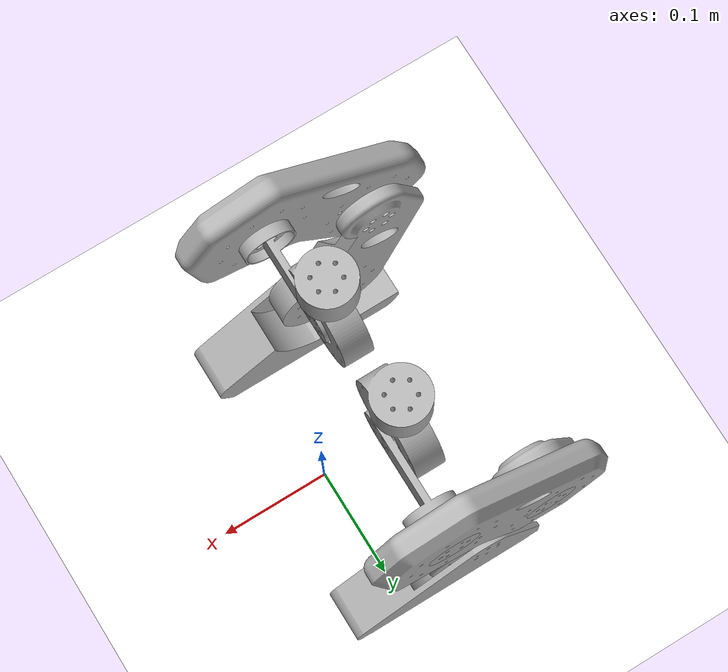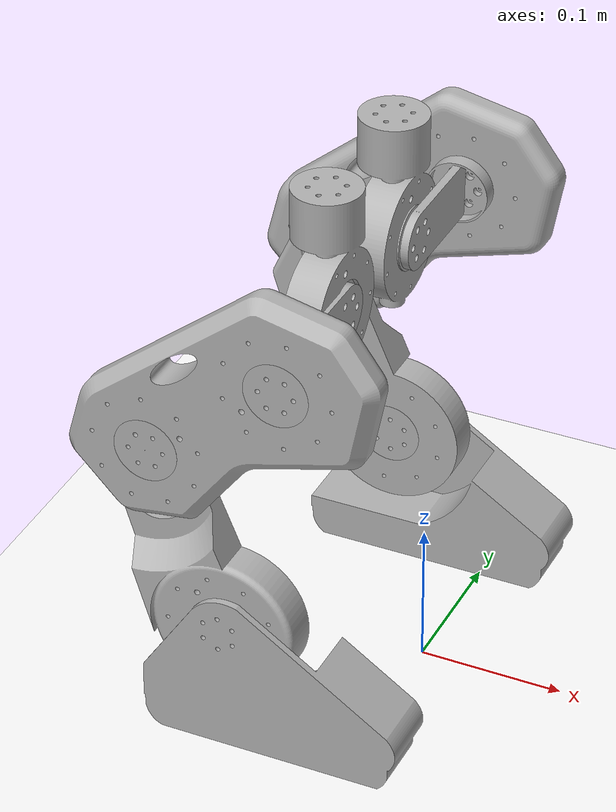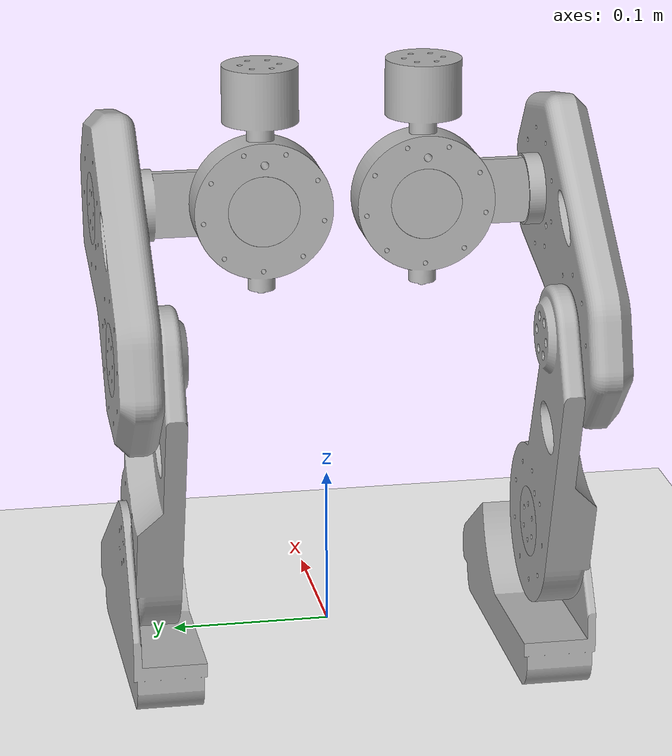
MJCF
<mujoco model="mak-zero">
  <compiler angle="radian" />

  <asset>
    <mesh name="pelvis" file="/Users/wangxiaochuan/wangxc/popmart/mak-gym/resources/robots/makZero/meshes/pelvis.stl" scale="0.001 0.001 0.001" />
    <mesh name="left_foot" file="/Users/wangxiaochuan/wangxc/popmart/mak-gym/resources/robots/makZero/meshes/left_foot.stl" scale="0.001 0.001 0.001" />
    <mesh name="left_shin" file="/Users/wangxiaochuan/wangxc/popmart/mak-gym/resources/robots/makZero/meshes/left_shin.stl" scale="0.001 0.001 0.001" />
    <mesh name="left_thigh" file="/Users/wangxiaochuan/wangxc/popmart/mak-gym/resources/robots/makZero/meshes/left_thigh.stl" scale="0.001 0.001 0.001" />
    <mesh name="left_hip" file="/Users/wangxiaochuan/wangxc/popmart/mak-gym/resources/robots/makZero/meshes/left_hip.stl" scale="0.001 0.001 0.001" />
    <mesh name="left_hip_rotation" file="/Users/wangxiaochuan/wangxc/popmart/mak-gym/resources/robots/makZero/meshes/left_hip_rotation.stl" scale="0.001 0.001 0.001" />
    <mesh name="right_foot" file="/Users/wangxiaochuan/wangxc/popmart/mak-gym/resources/robots/makZero/meshes/right_foot.stl" scale="0.001 0.001 0.001" />
    <mesh name="right_shin" file="/Users/wangxiaochuan/wangxc/popmart/mak-gym/resources/robots/makZero/meshes/right_shin.stl" scale="0.001 0.001 0.001" />
    <mesh name="right_thigh" file="/Users/wangxiaochuan/wangxc/popmart/mak-gym/resources/robots/makZero/meshes/right_thigh.stl" scale="0.001 0.001 0.001" />
    <mesh name="right_hip" file="/Users/wangxiaochuan/wangxc/popmart/mak-gym/resources/robots/makZero/meshes/right_hip.stl" scale="0.001 0.001 0.001" />
    <mesh name="right_hip_rotation" file="/Users/wangxiaochuan/wangxc/popmart/mak-gym/resources/robots/makZero/meshes/right_hip_rotation.stl" scale="0.001 0.001 0.001" />
  </asset>

  <worldbody>
    <body name="pelvis">
      <inertial pos="-0.053756 0.00118338 0.341947" quat="0.480275 0.513547 0.53279 0.470893" mass="5.713" diaginertia="0.43175 0.373333 0.200101" />
      <body name="trunk" pos="-0.035 0 0.26943">
        <inertial pos="0 0 0" mass="1e-09" diaginertia="0 0 0" />
        <body name="imu_link">
          <inertial pos="0 0 0" mass="0.001" diaginertia="0.0001 0.0001 0.0001" />
        </body>
      </body>
      <body name="left_hip_rotation" pos="-0.046575 0.048318 0.381049">
        <inertial pos="0.046575 -0.048318 -0.381049" quat="0.999573 0.0213461 0.0199274 0.00141326" mass="0.633" diaginertia="0.00533636 0.004183 0.00196963" />
        <joint name="left_hip_yaw" pos="0 0 0" axis="0 0 -1" range="-0.349066 0.349066" actuatorfrcrange="-23.7 23.7" />
        <geom pos="0.046575 -0.048318 -0.381049" type="mesh" rgba="0.7 0.7 0.7 1" mesh="left_hip_rotation" />
        <body name="left_hip" pos="-0.012208 -0.000241 -0.088208">
          <inertial pos="0.058783 -0.048077 -0.292841" quat="0.704899 0.708795 -0.00571972 -0.0263546" mass="0.633" diaginertia="0.00149816 0.00136791 0.000505934" />
          <joint name="left_hip_roll" pos="0 0 0" axis="1 0 0" range="-0.174533 0.174533" actuatorfrcrange="-23.7 23.7" />
          <geom pos="0.058783 -0.048077 -0.292841" quat="1 0 0 0" type="mesh" rgba="0.7 0.7 0.7 1" mesh="left_hip" />
          <body name="left_thigh" pos="0.02885 0.1018 -0.000556">
            <inertial pos="0.029933 -0.149877 -0.292285" quat="0.633403 0.297734 0.294346 0.650781" mass="0.633" diaginertia="0.0473468 0.0413446 0.0120747" />
            <joint name="left_hip_pitch" pos="0 0 0" axis="0 1 0" range="-0.523599 0.523599" actuatorfrcrange="-23.7 23.7" />
            <geom pos="0.029933 -0.149877 -0.292285" quat="1 0 0 0" type="mesh" rgba="0.7 0.7 0.7 1" mesh="left_thigh" />
            <body name="left_shin" pos="-0.088973 0 -0.067516">
              <inertial pos="0.118906 -0.149877 -0.224769" quat="0.708097 -0.166338 -0.130184 0.673783" mass="0.633" diaginertia="0.0117688 0.0102167 0.00215741" />
              <joint name="left_knee" pos="0 0 0" axis="0 1 0" range="-0.523599 0.523599" actuatorfrcrange="-23.7 23.7" />
              <geom pos="0.118906 -0.149877 -0.224769" quat="1 0 0 0" type="mesh" rgba="0.7 0.7 0.7 1" mesh="left_shin" />
              <body name="left_foot_link" pos="0.044426 -0.04 -0.134774">
                <inertial pos="0.07448 -0.109877 -0.089995" quat="0.540863 0.468785 0.58167 0.386481" mass="0.678" diaginertia="0.0103795 0.00833717 0.00325637" />
                <joint name="left_ankle" pos="0 0 0" axis="0 1 0" range="-0.523599 0.523599" actuatorfrcrange="-23.7 23.7" />
                <geom pos="0.07448 -0.109877 -0.089995" quat="1 0 0 0" type="mesh" rgba="0.7 0.7 0.7 1" mesh="left_foot" />
                <body name="left_foot" pos="0.025 0 -0.0785">
                  <inertial pos="0 0 0" mass="1e-09" diaginertia="0 0 0" />
                  <body name="left_foot_force_sensor" pos="0 0 -0.001">
                    <inertial pos="0 0 0" mass="0.001" diaginertia="0.0001 0.0001 0.0001" />
                  </body>
                </body>
              </body>
            </body>
          </body>
        </body>
      </body>
      <body name="right_hip_rotation" pos="-0.046575 -0.051682 0.381049">
        <inertial pos="0.046575 0.051682 -0.381049" quat="0.999573 -0.0213461 0.0199274 -0.00141326" mass="0.633" diaginertia="0.00533636 0.004183 0.00196963" />
        <joint name="right_hip_yaw" pos="0 0 0" axis="0 0 -1" range="-0.349066 0.349066" actuatorfrcrange="-23.7 23.7" />
        <geom pos="0.046575 0.051682 -0.381049" type="mesh" rgba="0.7 0.7 0.7 1" mesh="right_hip_rotation" />
        <body name="right_hip" pos="-0.012208 -0.000241 -0.088208">
          <inertial pos="0.058783 0.051923 -0.292841" quat="0.708795 0.704899 0.0263546 0.00571972" mass="0.633" diaginertia="0.00149816 0.00136791 0.000505934" />
          <joint name="right_hip_roll" pos="0 0 0" axis="1 0 0" range="-0.174533 0.174533" actuatorfrcrange="-23.7 23.7" />
          <geom pos="0.058783 0.051923 -0.292841" quat="1 0 0 0" type="mesh" rgba="0.7 0.7 0.7 1" mesh="right_hip" />
          <body name="right_thigh" pos="0.02485 -0.1011 -0.000556">
            <inertial pos="0.033933 0.153023 -0.292285" quat="0.650781 0.294346 0.297734 0.633403" mass="0.633" diaginertia="0.0473468 0.0413446 0.0120747" />
            <joint name="right_hip_pitch" pos="0 0 0" axis="0 -1 0" range="-0.523599 0.523599" actuatorfrcrange="-23.7 23.7" />
            <geom pos="0.033933 0.153023 -0.292285" quat="1 0 0 0" type="mesh" rgba="0.7 0.7 0.7 1" mesh="right_thigh" />
            <body name="right_shin" pos="-0.090138 0 -0.065953">
              <inertial pos="0.124071 0.153023 -0.226332" quat="0.673783 -0.130184 -0.166338 0.708097" mass="0.633" diaginertia="0.0117688 0.0102167 0.00215741" />
              <joint name="right_knee" pos="0 0 0" axis="0 1 0" range="-0.523599 0.523599" actuatorfrcrange="-23.7 23.7" />
              <geom pos="0.124071 0.153023 -0.226332" quat="1 0 0 0" type="mesh" rgba="0.7 0.7 0.7 1" mesh="right_shin" />
              <body name="right_foot_link" pos="0.042068 0.04 -0.135529">
                <inertial pos="0.082003 0.113023 -0.090803" quat="0.386481 0.58167 0.468785 0.540863" mass="0.678" diaginertia="0.0103795 0.00833717 0.00325637" />
                <joint name="right_ankle" pos="0 0 0" axis="0 -1 0" range="-0.523599 0.523599" actuatorfrcrange="-23.7 23.7" />
                <geom pos="0.082003 0.113023 -0.090803" quat="1 0 0 0" type="mesh" rgba="0.7 0.7 0.7 1" mesh="right_foot" />
                <body name="right_foot" pos="0.025 0 -0.0785">
                  <inertial pos="0 0 0" mass="1e-09" diaginertia="0 0 0" />
                  <body name="right_foot_force_sensor" pos="0 0 -0.001">
                    <inertial pos="0 0 0" mass="0.001" diaginertia="0.0001 0.0001 0.0001" />
                  </body>
                </body>
              </body>
            </body>
          </body>
        </body>
      </body>
    </body>
  <geom name="ground_plane" type="plane" size="5 5 10" material="MatPlane" rgba="1 1 1 1" /><light pos="0 0 1000" castshadow="true" /></worldbody>
<asset><texture name="texplane" builtin="checker" height="512" width="512" rgb1=".2 .3 .4" rgb2=".1 .15 .2" type="2d" /><material name="MatPlane" reflectance="0.5" shininess="0.01" specular="0.1" texrepeat="1 1" texture="texplane" texuniform="true" /></asset></mujoco>
